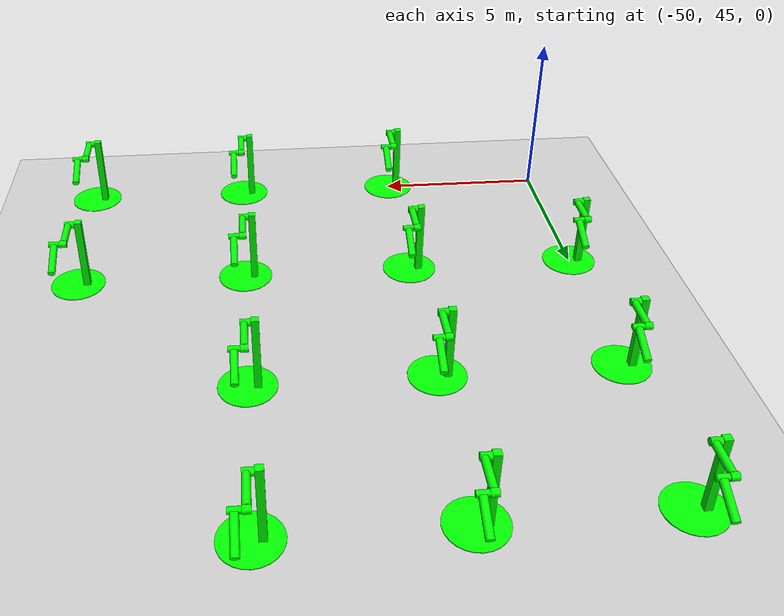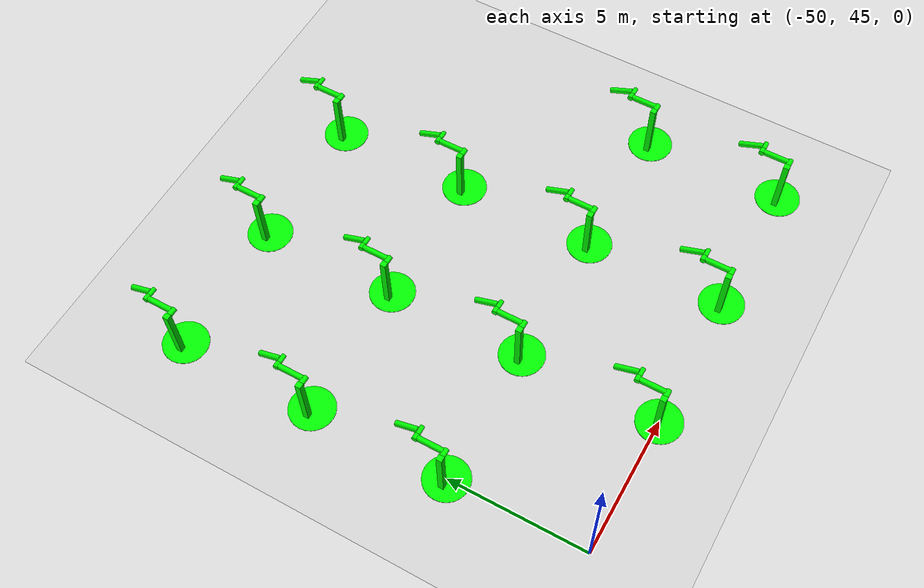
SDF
<sdf version="1.6">
 <world name="double_pendulums">
  <model name="ground_plane">
   <static>true</static>
   <link name="link">
    <collision name="collision">
     <geometry><plane><normal>0 0 1</normal><size>100 100</size></plane></geometry>
    </collision>
    <visual name="visual">
     <geometry><plane><normal>0 0 1</normal><size>100 100</size></plane></geometry>
     <material>
      <ambient>0.8 0.8 0.8 1</ambient>
      <diffuse>0.8 0.8 0.8 1</diffuse>
      <specular>0.8 0.8 0.8 1</specular>
     </material>
    </visual>
   </link>
  </model>
  <model name="dbl_pendulum_226">
   <pose>-45 45 0 0 0 0</pose>
   <link name="base">
    <inertial><mass>100</mass></inertial>
    <visual name="vis_plate_on_ground">
     <pose>0 0 0.01 0 0 0</pose>
     <geometry><cylinder><radius>0.8</radius><length>0.02</length></cylinder></geometry>
     <material><ambient>0 1 0 1</ambient><diffuse>0 1 0 1</diffuse><specular>0 1 0 1</specular></material>
    </visual>
    <visual name="vis_pole">
     <pose>-0.275 0 1.1 0 0 0</pose>
     <geometry><box><size>0.2 0.2 2.2</size></box></geometry>
     <material><ambient>0 1 0 1</ambient><diffuse>0 1 0 1</diffuse><specular>0 1 0 1</specular></material>
    </visual>
    <collision name="col_plate_on_ground">
     <pose>0 0 0.01 0 0 0</pose>
     <geometry><cylinder><radius>0.8</radius><length>0.02</length></cylinder></geometry>
    </collision>
    <collision name="col_pole">
     <pose>-0.275 0 1.1 0 0 0</pose>
     <geometry><box><size>0.2 0.2 2.2</size></box></geometry>
    </collision>
   </link>
   <link name="upper_link">
    <pose>0 0 2.1 -1.5708 0 0</pose>
    <inertial><pose>0 0 0.5 0 0 0</pose></inertial>
    <visual name="vis_upper_joint">
     <pose>-0.05 0 0 0 1.5708 0</pose>
     <geometry><cylinder><radius>0.1</radius><length>0.3</length></cylinder></geometry>
     <material><ambient>0 1 0 1</ambient><diffuse>0 1 0 1</diffuse><specular>0 1 0 1</specular></material>
    </visual>
    <visual name="vis_lower_joint">
     <pose>0 0 1.0 0 1.5708 0</pose>
     <geometry><cylinder><radius>0.1</radius><length>0.2</length></cylinder></geometry>
     <material><ambient>0 1 0 1</ambient><diffuse>0 1 0 1</diffuse><specular>0 1 0 1</specular></material>
    </visual>
    <visual name="vis_cylinder">
     <pose>0 0 0.5 0 0 0</pose>
     <geometry><cylinder><radius>0.1</radius><length>0.9</length></cylinder></geometry>
     <material><ambient>0 1 0 1</ambient><diffuse>0 1 0 1</diffuse><specular>0 1 0 1</specular></material>
    </visual>
    <collision name="col_upper_joint">
     <pose>-0.05 0 0 0 1.5708 0</pose>
     <geometry><cylinder><radius>0.1</radius><length>0.3</length></cylinder></geometry>
    </collision>
    <collision name="col_lower_joint">
     <pose>0 0 1.0 0 1.5708 0</pose>
     <geometry><cylinder><radius>0.1</radius><length>0.2</length></cylinder></geometry>
    </collision>
    <collision name="col_cylinder">
     <pose>0 0 0.5 0 0 0</pose>
     <geometry><cylinder><radius>0.1</radius><length>0.9</length></cylinder></geometry>
    </collision>
   </link>
   <link name="lower_link">
    <pose>0.25 1.0 2.1 -2 0 0</pose>
    <inertial><pose>0 0 0.5 0 0 0</pose></inertial>
    <visual name="vis_lower_joint">
     <pose>0 0 0 0 1.5708 0</pose>
     <geometry><cylinder><radius>0.08</radius><length>0.3</length></cylinder></geometry>
     <material><ambient>0 1 0 1</ambient><diffuse>0 1 0 1</diffuse><specular>0 1 0 1</specular></material>
    </visual>
    <visual name="vis_cylinder">
     <pose>0 0 0.5 0 0 0</pose>
     <geometry><cylinder><radius>0.1</radius><length>0.9</length></cylinder></geometry>
     <material><ambient>0 1 0 1</ambient><diffuse>0 1 0 1</diffuse><specular>0 1 0 1</specular></material>
    </visual>
    <collision name="col_lower_joint">
     <pose>0 0 0 0 1.5708 0</pose>
     <geometry><cylinder><radius>0.08</radius><length>0.3</length></cylinder></geometry>
    </collision>
    <collision name="col_cylinder">
     <pose>0 0 0.5 0 0 0</pose>
     <geometry><cylinder><radius>0.1</radius><length>0.9</length></cylinder></geometry>
    </collision>
   </link>
   <joint name="upper_joint" type="revolute">
    <parent>base</parent>
    <child>upper_link</child>
    <axis><xyz>1.0 0 0</xyz></axis>
   </joint>
   <joint name="lower_joint" type="revolute">
    <parent>upper_link</parent>
    <child>lower_link</child>
    <axis><xyz>1.0 0 0</xyz></axis>
   </joint>
  </model>
  <model name="dbl_pendulum_227">
   <pose>-40 45 0 0 0 0</pose>
   <link name="base">
    <inertial><mass>100</mass></inertial>
    <visual name="vis_plate_on_ground">
     <pose>0 0 0.01 0 0 0</pose>
     <geometry><cylinder><radius>0.8</radius><length>0.02</length></cylinder></geometry>
     <material><ambient>0 1 0 1</ambient><diffuse>0 1 0 1</diffuse><specular>0 1 0 1</specular></material>
    </visual>
    <visual name="vis_pole">
     <pose>-0.275 0 1.1 0 0 0</pose>
     <geometry><box><size>0.2 0.2 2.2</size></box></geometry>
     <material><ambient>0 1 0 1</ambient><diffuse>0 1 0 1</diffuse><specular>0 1 0 1</specular></material>
    </visual>
    <collision name="col_plate_on_ground">
     <pose>0 0 0.01 0 0 0</pose>
     <geometry><cylinder><radius>0.8</radius><length>0.02</length></cylinder></geometry>
    </collision>
    <collision name="col_pole">
     <pose>-0.275 0 1.1 0 0 0</pose>
     <geometry><box><size>0.2 0.2 2.2</size></box></geometry>
    </collision>
   </link>
   <link name="upper_link">
    <pose>0 0 2.1 -1.5708 0 0</pose>
    <inertial><pose>0 0 0.5 0 0 0</pose></inertial>
    <visual name="vis_upper_joint">
     <pose>-0.05 0 0 0 1.5708 0</pose>
     <geometry><cylinder><radius>0.1</radius><length>0.3</length></cylinder></geometry>
     <material><ambient>0 1 0 1</ambient><diffuse>0 1 0 1</diffuse><specular>0 1 0 1</specular></material>
    </visual>
    <visual name="vis_lower_joint">
     <pose>0 0 1.0 0 1.5708 0</pose>
     <geometry><cylinder><radius>0.1</radius><length>0.2</length></cylinder></geometry>
     <material><ambient>0 1 0 1</ambient><diffuse>0 1 0 1</diffuse><specular>0 1 0 1</specular></material>
    </visual>
    <visual name="vis_cylinder">
     <pose>0 0 0.5 0 0 0</pose>
     <geometry><cylinder><radius>0.1</radius><length>0.9</length></cylinder></geometry>
     <material><ambient>0 1 0 1</ambient><diffuse>0 1 0 1</diffuse><specular>0 1 0 1</specular></material>
    </visual>
    <collision name="col_upper_joint">
     <pose>-0.05 0 0 0 1.5708 0</pose>
     <geometry><cylinder><radius>0.1</radius><length>0.3</length></cylinder></geometry>
    </collision>
    <collision name="col_lower_joint">
     <pose>0 0 1.0 0 1.5708 0</pose>
     <geometry><cylinder><radius>0.1</radius><length>0.2</length></cylinder></geometry>
    </collision>
    <collision name="col_cylinder">
     <pose>0 0 0.5 0 0 0</pose>
     <geometry><cylinder><radius>0.1</radius><length>0.9</length></cylinder></geometry>
    </collision>
   </link>
   <link name="lower_link">
    <pose>0.25 1.0 2.1 -2 0 0</pose>
    <inertial><pose>0 0 0.5 0 0 0</pose></inertial>
    <visual name="vis_lower_joint">
     <pose>0 0 0 0 1.5708 0</pose>
     <geometry><cylinder><radius>0.08</radius><length>0.3</length></cylinder></geometry>
     <material><ambient>0 1 0 1</ambient><diffuse>0 1 0 1</diffuse><specular>0 1 0 1</specular></material>
    </visual>
    <visual name="vis_cylinder">
     <pose>0 0 0.5 0 0 0</pose>
     <geometry><cylinder><radius>0.1</radius><length>0.9</length></cylinder></geometry>
     <material><ambient>0 1 0 1</ambient><diffuse>0 1 0 1</diffuse><specular>0 1 0 1</specular></material>
    </visual>
    <collision name="col_lower_joint">
     <pose>0 0 0 0 1.5708 0</pose>
     <geometry><cylinder><radius>0.08</radius><length>0.3</length></cylinder></geometry>
    </collision>
    <collision name="col_cylinder">
     <pose>0 0 0.5 0 0 0</pose>
     <geometry><cylinder><radius>0.1</radius><length>0.9</length></cylinder></geometry>
    </collision>
   </link>
   <joint name="upper_joint" type="revolute">
    <parent>base</parent>
    <child>upper_link</child>
    <axis><xyz>1.0 0 0</xyz></axis>
   </joint>
   <joint name="lower_joint" type="revolute">
    <parent>upper_link</parent>
    <child>lower_link</child>
    <axis><xyz>1.0 0 0</xyz></axis>
   </joint>
  </model>
  <model name="dbl_pendulum_228">
   <pose>-35 45 0 0 0 0</pose>
   <link name="base">
    <inertial><mass>100</mass></inertial>
    <visual name="vis_plate_on_ground">
     <pose>0 0 0.01 0 0 0</pose>
     <geometry><cylinder><radius>0.8</radius><length>0.02</length></cylinder></geometry>
     <material><ambient>0 1 0 1</ambient><diffuse>0 1 0 1</diffuse><specular>0 1 0 1</specular></material>
    </visual>
    <visual name="vis_pole">
     <pose>-0.275 0 1.1 0 0 0</pose>
     <geometry><box><size>0.2 0.2 2.2</size></box></geometry>
     <material><ambient>0 1 0 1</ambient><diffuse>0 1 0 1</diffuse><specular>0 1 0 1</specular></material>
    </visual>
    <collision name="col_plate_on_ground">
     <pose>0 0 0.01 0 0 0</pose>
     <geometry><cylinder><radius>0.8</radius><length>0.02</length></cylinder></geometry>
    </collision>
    <collision name="col_pole">
     <pose>-0.275 0 1.1 0 0 0</pose>
     <geometry><box><size>0.2 0.2 2.2</size></box></geometry>
    </collision>
   </link>
   <link name="upper_link">
    <pose>0 0 2.1 -1.5708 0 0</pose>
    <inertial><pose>0 0 0.5 0 0 0</pose></inertial>
    <visual name="vis_upper_joint">
     <pose>-0.05 0 0 0 1.5708 0</pose>
     <geometry><cylinder><radius>0.1</radius><length>0.3</length></cylinder></geometry>
     <material><ambient>0 1 0 1</ambient><diffuse>0 1 0 1</diffuse><specular>0 1 0 1</specular></material>
    </visual>
    <visual name="vis_lower_joint">
     <pose>0 0 1.0 0 1.5708 0</pose>
     <geometry><cylinder><radius>0.1</radius><length>0.2</length></cylinder></geometry>
     <material><ambient>0 1 0 1</ambient><diffuse>0 1 0 1</diffuse><specular>0 1 0 1</specular></material>
    </visual>
    <visual name="vis_cylinder">
     <pose>0 0 0.5 0 0 0</pose>
     <geometry><cylinder><radius>0.1</radius><length>0.9</length></cylinder></geometry>
     <material><ambient>0 1 0 1</ambient><diffuse>0 1 0 1</diffuse><specular>0 1 0 1</specular></material>
    </visual>
    <collision name="col_upper_joint">
     <pose>-0.05 0 0 0 1.5708 0</pose>
     <geometry><cylinder><radius>0.1</radius><length>0.3</length></cylinder></geometry>
    </collision>
    <collision name="col_lower_joint">
     <pose>0 0 1.0 0 1.5708 0</pose>
     <geometry><cylinder><radius>0.1</radius><length>0.2</length></cylinder></geometry>
    </collision>
    <collision name="col_cylinder">
     <pose>0 0 0.5 0 0 0</pose>
     <geometry><cylinder><radius>0.1</radius><length>0.9</length></cylinder></geometry>
    </collision>
   </link>
   <link name="lower_link">
    <pose>0.25 1.0 2.1 -2 0 0</pose>
    <inertial><pose>0 0 0.5 0 0 0</pose></inertial>
    <visual name="vis_lower_joint">
     <pose>0 0 0 0 1.5708 0</pose>
     <geometry><cylinder><radius>0.08</radius><length>0.3</length></cylinder></geometry>
     <material><ambient>0 1 0 1</ambient><diffuse>0 1 0 1</diffuse><specular>0 1 0 1</specular></material>
    </visual>
    <visual name="vis_cylinder">
     <pose>0 0 0.5 0 0 0</pose>
     <geometry><cylinder><radius>0.1</radius><length>0.9</length></cylinder></geometry>
     <material><ambient>0 1 0 1</ambient><diffuse>0 1 0 1</diffuse><specular>0 1 0 1</specular></material>
    </visual>
    <collision name="col_lower_joint">
     <pose>0 0 0 0 1.5708 0</pose>
     <geometry><cylinder><radius>0.08</radius><length>0.3</length></cylinder></geometry>
    </collision>
    <collision name="col_cylinder">
     <pose>0 0 0.5 0 0 0</pose>
     <geometry><cylinder><radius>0.1</radius><length>0.9</length></cylinder></geometry>
    </collision>
   </link>
   <joint name="upper_joint" type="revolute">
    <parent>base</parent>
    <child>upper_link</child>
    <axis><xyz>1.0 0 0</xyz></axis>
   </joint>
   <joint name="lower_joint" type="revolute">
    <parent>upper_link</parent>
    <child>lower_link</child>
    <axis><xyz>1.0 0 0</xyz></axis>
   </joint>
  </model>
  <model name="dbl_pendulum_250">
   <pose>-50 50 0 0 0 0</pose>
   <link name="base">
    <inertial><mass>100</mass></inertial>
    <visual name="vis_plate_on_ground">
     <pose>0 0 0.01 0 0 0</pose>
     <geometry><cylinder><radius>0.8</radius><length>0.02</length></cylinder></geometry>
     <material><ambient>0 1 0 1</ambient><diffuse>0 1 0 1</diffuse><specular>0 1 0 1</specular></material>
    </visual>
    <visual name="vis_pole">
     <pose>-0.275 0 1.1 0 0 0</pose>
     <geometry><box><size>0.2 0.2 2.2</size></box></geometry>
     <material><ambient>0 1 0 1</ambient><diffuse>0 1 0 1</diffuse><specular>0 1 0 1</specular></material>
    </visual>
    <collision name="col_plate_on_ground">
     <pose>0 0 0.01 0 0 0</pose>
     <geometry><cylinder><radius>0.8</radius><length>0.02</length></cylinder></geometry>
    </collision>
    <collision name="col_pole">
     <pose>-0.275 0 1.1 0 0 0</pose>
     <geometry><box><size>0.2 0.2 2.2</size></box></geometry>
    </collision>
   </link>
   <link name="upper_link">
    <pose>0 0 2.1 -1.5708 0 0</pose>
    <inertial><pose>0 0 0.5 0 0 0</pose></inertial>
    <visual name="vis_upper_joint">
     <pose>-0.05 0 0 0 1.5708 0</pose>
     <geometry><cylinder><radius>0.1</radius><length>0.3</length></cylinder></geometry>
     <material><ambient>0 1 0 1</ambient><diffuse>0 1 0 1</diffuse><specular>0 1 0 1</specular></material>
    </visual>
    <visual name="vis_lower_joint">
     <pose>0 0 1.0 0 1.5708 0</pose>
     <geometry><cylinder><radius>0.1</radius><length>0.2</length></cylinder></geometry>
     <material><ambient>0 1 0 1</ambient><diffuse>0 1 0 1</diffuse><specular>0 1 0 1</specular></material>
    </visual>
    <visual name="vis_cylinder">
     <pose>0 0 0.5 0 0 0</pose>
     <geometry><cylinder><radius>0.1</radius><length>0.9</length></cylinder></geometry>
     <material><ambient>0 1 0 1</ambient><diffuse>0 1 0 1</diffuse><specular>0 1 0 1</specular></material>
    </visual>
    <collision name="col_upper_joint">
     <pose>-0.05 0 0 0 1.5708 0</pose>
     <geometry><cylinder><radius>0.1</radius><length>0.3</length></cylinder></geometry>
    </collision>
    <collision name="col_lower_joint">
     <pose>0 0 1.0 0 1.5708 0</pose>
     <geometry><cylinder><radius>0.1</radius><length>0.2</length></cylinder></geometry>
    </collision>
    <collision name="col_cylinder">
     <pose>0 0 0.5 0 0 0</pose>
     <geometry><cylinder><radius>0.1</radius><length>0.9</length></cylinder></geometry>
    </collision>
   </link>
   <link name="lower_link">
    <pose>0.25 1.0 2.1 -2 0 0</pose>
    <inertial><pose>0 0 0.5 0 0 0</pose></inertial>
    <visual name="vis_lower_joint">
     <pose>0 0 0 0 1.5708 0</pose>
     <geometry><cylinder><radius>0.08</radius><length>0.3</length></cylinder></geometry>
     <material><ambient>0 1 0 1</ambient><diffuse>0 1 0 1</diffuse><specular>0 1 0 1</specular></material>
    </visual>
    <visual name="vis_cylinder">
     <pose>0 0 0.5 0 0 0</pose>
     <geometry><cylinder><radius>0.1</radius><length>0.9</length></cylinder></geometry>
     <material><ambient>0 1 0 1</ambient><diffuse>0 1 0 1</diffuse><specular>0 1 0 1</specular></material>
    </visual>
    <collision name="col_lower_joint">
     <pose>0 0 0 0 1.5708 0</pose>
     <geometry><cylinder><radius>0.08</radius><length>0.3</length></cylinder></geometry>
    </collision>
    <collision name="col_cylinder">
     <pose>0 0 0.5 0 0 0</pose>
     <geometry><cylinder><radius>0.1</radius><length>0.9</length></cylinder></geometry>
    </collision>
   </link>
   <joint name="upper_joint" type="revolute">
    <parent>base</parent>
    <child>upper_link</child>
    <axis><xyz>1.0 0 0</xyz></axis>
   </joint>
   <joint name="lower_joint" type="revolute">
    <parent>upper_link</parent>
    <child>lower_link</child>
    <axis><xyz>1.0 0 0</xyz></axis>
   </joint>
  </model>
  <model name="dbl_pendulum_251">
   <pose>-45 50 0 0 0 0</pose>
   <link name="base">
    <inertial><mass>100</mass></inertial>
    <visual name="vis_plate_on_ground">
     <pose>0 0 0.01 0 0 0</pose>
     <geometry><cylinder><radius>0.8</radius><length>0.02</length></cylinder></geometry>
     <material><ambient>0 1 0 1</ambient><diffuse>0 1 0 1</diffuse><specular>0 1 0 1</specular></material>
    </visual>
    <visual name="vis_pole">
     <pose>-0.275 0 1.1 0 0 0</pose>
     <geometry><box><size>0.2 0.2 2.2</size></box></geometry>
     <material><ambient>0 1 0 1</ambient><diffuse>0 1 0 1</diffuse><specular>0 1 0 1</specular></material>
    </visual>
    <collision name="col_plate_on_ground">
     <pose>0 0 0.01 0 0 0</pose>
     <geometry><cylinder><radius>0.8</radius><length>0.02</length></cylinder></geometry>
    </collision>
    <collision name="col_pole">
     <pose>-0.275 0 1.1 0 0 0</pose>
     <geometry><box><size>0.2 0.2 2.2</size></box></geometry>
    </collision>
   </link>
   <link name="upper_link">
    <pose>0 0 2.1 -1.5708 0 0</pose>
    <inertial><pose>0 0 0.5 0 0 0</pose></inertial>
    <visual name="vis_upper_joint">
     <pose>-0.05 0 0 0 1.5708 0</pose>
     <geometry><cylinder><radius>0.1</radius><length>0.3</length></cylinder></geometry>
     <material><ambient>0 1 0 1</ambient><diffuse>0 1 0 1</diffuse><specular>0 1 0 1</specular></material>
    </visual>
    <visual name="vis_lower_joint">
     <pose>0 0 1.0 0 1.5708 0</pose>
     <geometry><cylinder><radius>0.1</radius><length>0.2</length></cylinder></geometry>
     <material><ambient>0 1 0 1</ambient><diffuse>0 1 0 1</diffuse><specular>0 1 0 1</specular></material>
    </visual>
    <visual name="vis_cylinder">
     <pose>0 0 0.5 0 0 0</pose>
     <geometry><cylinder><radius>0.1</radius><length>0.9</length></cylinder></geometry>
     <material><ambient>0 1 0 1</ambient><diffuse>0 1 0 1</diffuse><specular>0 1 0 1</specular></material>
    </visual>
    <collision name="col_upper_joint">
     <pose>-0.05 0 0 0 1.5708 0</pose>
     <geometry><cylinder><radius>0.1</radius><length>0.3</length></cylinder></geometry>
    </collision>
    <collision name="col_lower_joint">
     <pose>0 0 1.0 0 1.5708 0</pose>
     <geometry><cylinder><radius>0.1</radius><length>0.2</length></cylinder></geometry>
    </collision>
    <collision name="col_cylinder">
     <pose>0 0 0.5 0 0 0</pose>
     <geometry><cylinder><radius>0.1</radius><length>0.9</length></cylinder></geometry>
    </collision>
   </link>
   <link name="lower_link">
    <pose>0.25 1.0 2.1 -2 0 0</pose>
    <inertial><pose>0 0 0.5 0 0 0</pose></inertial>
    <visual name="vis_lower_joint">
     <pose>0 0 0 0 1.5708 0</pose>
     <geometry><cylinder><radius>0.08</radius><length>0.3</length></cylinder></geometry>
     <material><ambient>0 1 0 1</ambient><diffuse>0 1 0 1</diffuse><specular>0 1 0 1</specular></material>
    </visual>
    <visual name="vis_cylinder">
     <pose>0 0 0.5 0 0 0</pose>
     <geometry><cylinder><radius>0.1</radius><length>0.9</length></cylinder></geometry>
     <material><ambient>0 1 0 1</ambient><diffuse>0 1 0 1</diffuse><specular>0 1 0 1</specular></material>
    </visual>
    <collision name="col_lower_joint">
     <pose>0 0 0 0 1.5708 0</pose>
     <geometry><cylinder><radius>0.08</radius><length>0.3</length></cylinder></geometry>
    </collision>
    <collision name="col_cylinder">
     <pose>0 0 0.5 0 0 0</pose>
     <geometry><cylinder><radius>0.1</radius><length>0.9</length></cylinder></geometry>
    </collision>
   </link>
   <joint name="upper_joint" type="revolute">
    <parent>base</parent>
    <child>upper_link</child>
    <axis><xyz>1.0 0 0</xyz></axis>
   </joint>
   <joint name="lower_joint" type="revolute">
    <parent>upper_link</parent>
    <child>lower_link</child>
    <axis><xyz>1.0 0 0</xyz></axis>
   </joint>
  </model>
  <model name="dbl_pendulum_252">
   <pose>-40 50 0 0 0 0</pose>
   <link name="base">
    <inertial><mass>100</mass></inertial>
    <visual name="vis_plate_on_ground">
     <pose>0 0 0.01 0 0 0</pose>
     <geometry><cylinder><radius>0.8</radius><length>0.02</length></cylinder></geometry>
     <material><ambient>0 1 0 1</ambient><diffuse>0 1 0 1</diffuse><specular>0 1 0 1</specular></material>
    </visual>
    <visual name="vis_pole">
     <pose>-0.275 0 1.1 0 0 0</pose>
     <geometry><box><size>0.2 0.2 2.2</size></box></geometry>
     <material><ambient>0 1 0 1</ambient><diffuse>0 1 0 1</diffuse><specular>0 1 0 1</specular></material>
    </visual>
    <collision name="col_plate_on_ground">
     <pose>0 0 0.01 0 0 0</pose>
     <geometry><cylinder><radius>0.8</radius><length>0.02</length></cylinder></geometry>
    </collision>
    <collision name="col_pole">
     <pose>-0.275 0 1.1 0 0 0</pose>
     <geometry><box><size>0.2 0.2 2.2</size></box></geometry>
    </collision>
   </link>
   <link name="upper_link">
    <pose>0 0 2.1 -1.5708 0 0</pose>
    <inertial><pose>0 0 0.5 0 0 0</pose></inertial>
    <visual name="vis_upper_joint">
     <pose>-0.05 0 0 0 1.5708 0</pose>
     <geometry><cylinder><radius>0.1</radius><length>0.3</length></cylinder></geometry>
     <material><ambient>0 1 0 1</ambient><diffuse>0 1 0 1</diffuse><specular>0 1 0 1</specular></material>
    </visual>
    <visual name="vis_lower_joint">
     <pose>0 0 1.0 0 1.5708 0</pose>
     <geometry><cylinder><radius>0.1</radius><length>0.2</length></cylinder></geometry>
     <material><ambient>0 1 0 1</ambient><diffuse>0 1 0 1</diffuse><specular>0 1 0 1</specular></material>
    </visual>
    <visual name="vis_cylinder">
     <pose>0 0 0.5 0 0 0</pose>
     <geometry><cylinder><radius>0.1</radius><length>0.9</length></cylinder></geometry>
     <material><ambient>0 1 0 1</ambient><diffuse>0 1 0 1</diffuse><specular>0 1 0 1</specular></material>
    </visual>
    <collision name="col_upper_joint">
     <pose>-0.05 0 0 0 1.5708 0</pose>
     <geometry><cylinder><radius>0.1</radius><length>0.3</length></cylinder></geometry>
    </collision>
    <collision name="col_lower_joint">
     <pose>0 0 1.0 0 1.5708 0</pose>
     <geometry><cylinder><radius>0.1</radius><length>0.2</length></cylinder></geometry>
    </collision>
    <collision name="col_cylinder">
     <pose>0 0 0.5 0 0 0</pose>
     <geometry><cylinder><radius>0.1</radius><length>0.9</length></cylinder></geometry>
    </collision>
   </link>
   <link name="lower_link">
    <pose>0.25 1.0 2.1 -2 0 0</pose>
    <inertial><pose>0 0 0.5 0 0 0</pose></inertial>
    <visual name="vis_lower_joint">
     <pose>0 0 0 0 1.5708 0</pose>
     <geometry><cylinder><radius>0.08</radius><length>0.3</length></cylinder></geometry>
     <material><ambient>0 1 0 1</ambient><diffuse>0 1 0 1</diffuse><specular>0 1 0 1</specular></material>
    </visual>
    <visual name="vis_cylinder">
     <pose>0 0 0.5 0 0 0</pose>
     <geometry><cylinder><radius>0.1</radius><length>0.9</length></cylinder></geometry>
     <material><ambient>0 1 0 1</ambient><diffuse>0 1 0 1</diffuse><specular>0 1 0 1</specular></material>
    </visual>
    <collision name="col_lower_joint">
     <pose>0 0 0 0 1.5708 0</pose>
     <geometry><cylinder><radius>0.08</radius><length>0.3</length></cylinder></geometry>
    </collision>
    <collision name="col_cylinder">
     <pose>0 0 0.5 0 0 0</pose>
     <geometry><cylinder><radius>0.1</radius><length>0.9</length></cylinder></geometry>
    </collision>
   </link>
   <joint name="upper_joint" type="revolute">
    <parent>base</parent>
    <child>upper_link</child>
    <axis><xyz>1.0 0 0</xyz></axis>
   </joint>
   <joint name="lower_joint" type="revolute">
    <parent>upper_link</parent>
    <child>lower_link</child>
    <axis><xyz>1.0 0 0</xyz></axis>
   </joint>
  </model>
  <model name="dbl_pendulum_253">
   <pose>-35 50 0 0 0 0</pose>
   <link name="base">
    <inertial><mass>100</mass></inertial>
    <visual name="vis_plate_on_ground">
     <pose>0 0 0.01 0 0 0</pose>
     <geometry><cylinder><radius>0.8</radius><length>0.02</length></cylinder></geometry>
     <material><ambient>0 1 0 1</ambient><diffuse>0 1 0 1</diffuse><specular>0 1 0 1</specular></material>
    </visual>
    <visual name="vis_pole">
     <pose>-0.275 0 1.1 0 0 0</pose>
     <geometry><box><size>0.2 0.2 2.2</size></box></geometry>
     <material><ambient>0 1 0 1</ambient><diffuse>0 1 0 1</diffuse><specular>0 1 0 1</specular></material>
    </visual>
    <collision name="col_plate_on_ground">
     <pose>0 0 0.01 0 0 0</pose>
     <geometry><cylinder><radius>0.8</radius><length>0.02</length></cylinder></geometry>
    </collision>
    <collision name="col_pole">
     <pose>-0.275 0 1.1 0 0 0</pose>
     <geometry><box><size>0.2 0.2 2.2</size></box></geometry>
    </collision>
   </link>
   <link name="upper_link">
    <pose>0 0 2.1 -1.5708 0 0</pose>
    <inertial><pose>0 0 0.5 0 0 0</pose></inertial>
    <visual name="vis_upper_joint">
     <pose>-0.05 0 0 0 1.5708 0</pose>
     <geometry><cylinder><radius>0.1</radius><length>0.3</length></cylinder></geometry>
     <material><ambient>0 1 0 1</ambient><diffuse>0 1 0 1</diffuse><specular>0 1 0 1</specular></material>
    </visual>
    <visual name="vis_lower_joint">
     <pose>0 0 1.0 0 1.5708 0</pose>
     <geometry><cylinder><radius>0.1</radius><length>0.2</length></cylinder></geometry>
     <material><ambient>0 1 0 1</ambient><diffuse>0 1 0 1</diffuse><specular>0 1 0 1</specular></material>
    </visual>
    <visual name="vis_cylinder">
     <pose>0 0 0.5 0 0 0</pose>
     <geometry><cylinder><radius>0.1</radius><length>0.9</length></cylinder></geometry>
     <material><ambient>0 1 0 1</ambient><diffuse>0 1 0 1</diffuse><specular>0 1 0 1</specular></material>
    </visual>
    <collision name="col_upper_joint">
     <pose>-0.05 0 0 0 1.5708 0</pose>
     <geometry><cylinder><radius>0.1</radius><length>0.3</length></cylinder></geometry>
    </collision>
    <collision name="col_lower_joint">
     <pose>0 0 1.0 0 1.5708 0</pose>
     <geometry><cylinder><radius>0.1</radius><length>0.2</length></cylinder></geometry>
    </collision>
    <collision name="col_cylinder">
     <pose>0 0 0.5 0 0 0</pose>
     <geometry><cylinder><radius>0.1</radius><length>0.9</length></cylinder></geometry>
    </collision>
   </link>
   <link name="lower_link">
    <pose>0.25 1.0 2.1 -2 0 0</pose>
    <inertial><pose>0 0 0.5 0 0 0</pose></inertial>
    <visual name="vis_lower_joint">
     <pose>0 0 0 0 1.5708 0</pose>
     <geometry><cylinder><radius>0.08</radius><length>0.3</length></cylinder></geometry>
     <material><ambient>0 1 0 1</ambient><diffuse>0 1 0 1</diffuse><specular>0 1 0 1</specular></material>
    </visual>
    <visual name="vis_cylinder">
     <pose>0 0 0.5 0 0 0</pose>
     <geometry><cylinder><radius>0.1</radius><length>0.9</length></cylinder></geometry>
     <material><ambient>0 1 0 1</ambient><diffuse>0 1 0 1</diffuse><specular>0 1 0 1</specular></material>
    </visual>
    <collision name="col_lower_joint">
     <pose>0 0 0 0 1.5708 0</pose>
     <geometry><cylinder><radius>0.08</radius><length>0.3</length></cylinder></geometry>
    </collision>
    <collision name="col_cylinder">
     <pose>0 0 0.5 0 0 0</pose>
     <geometry><cylinder><radius>0.1</radius><length>0.9</length></cylinder></geometry>
    </collision>
   </link>
   <joint name="upper_joint" type="revolute">
    <parent>base</parent>
    <child>upper_link</child>
    <axis><xyz>1.0 0 0</xyz></axis>
   </joint>
   <joint name="lower_joint" type="revolute">
    <parent>upper_link</parent>
    <child>lower_link</child>
    <axis><xyz>1.0 0 0</xyz></axis>
   </joint>
  </model>
  <model name="dbl_pendulum_275">
   <pose>-50 55 0 0 0 0</pose>
   <link name="base">
    <inertial><mass>100</mass></inertial>
    <visual name="vis_plate_on_ground">
     <pose>0 0 0.01 0 0 0</pose>
     <geometry><cylinder><radius>0.8</radius><length>0.02</length></cylinder></geometry>
     <material><ambient>0 1 0 1</ambient><diffuse>0 1 0 1</diffuse><specular>0 1 0 1</specular></material>
    </visual>
    <visual name="vis_pole">
     <pose>-0.275 0 1.1 0 0 0</pose>
     <geometry><box><size>0.2 0.2 2.2</size></box></geometry>
     <material><ambient>0 1 0 1</ambient><diffuse>0 1 0 1</diffuse><specular>0 1 0 1</specular></material>
    </visual>
    <collision name="col_plate_on_ground">
     <pose>0 0 0.01 0 0 0</pose>
     <geometry><cylinder><radius>0.8</radius><length>0.02</length></cylinder></geometry>
    </collision>
    <collision name="col_pole">
     <pose>-0.275 0 1.1 0 0 0</pose>
     <geometry><box><size>0.2 0.2 2.2</size></box></geometry>
    </collision>
   </link>
   <link name="upper_link">
    <pose>0 0 2.1 -1.5708 0 0</pose>
    <inertial><pose>0 0 0.5 0 0 0</pose></inertial>
    <visual name="vis_upper_joint">
     <pose>-0.05 0 0 0 1.5708 0</pose>
     <geometry><cylinder><radius>0.1</radius><length>0.3</length></cylinder></geometry>
     <material><ambient>0 1 0 1</ambient><diffuse>0 1 0 1</diffuse><specular>0 1 0 1</specular></material>
    </visual>
    <visual name="vis_lower_joint">
     <pose>0 0 1.0 0 1.5708 0</pose>
     <geometry><cylinder><radius>0.1</radius><length>0.2</length></cylinder></geometry>
     <material><ambient>0 1 0 1</ambient><diffuse>0 1 0 1</diffuse><specular>0 1 0 1</specular></material>
    </visual>
    <visual name="vis_cylinder">
     <pose>0 0 0.5 0 0 0</pose>
     <geometry><cylinder><radius>0.1</radius><length>0.9</length></cylinder></geometry>
     <material><ambient>0 1 0 1</ambient><diffuse>0 1 0 1</diffuse><specular>0 1 0 1</specular></material>
    </visual>
    <collision name="col_upper_joint">
     <pose>-0.05 0 0 0 1.5708 0</pose>
     <geometry><cylinder><radius>0.1</radius><length>0.3</length></cylinder></geometry>
    </collision>
    <collision name="col_lower_joint">
     <pose>0 0 1.0 0 1.5708 0</pose>
     <geometry><cylinder><radius>0.1</radius><length>0.2</length></cylinder></geometry>
    </collision>
    <collision name="col_cylinder">
     <pose>0 0 0.5 0 0 0</pose>
     <geometry><cylinder><radius>0.1</radius><length>0.9</length></cylinder></geometry>
    </collision>
   </link>
   <link name="lower_link">
    <pose>0.25 1.0 2.1 -2 0 0</pose>
    <inertial><pose>0 0 0.5 0 0 0</pose></inertial>
    <visual name="vis_lower_joint">
     <pose>0 0 0 0 1.5708 0</pose>
     <geometry><cylinder><radius>0.08</radius><length>0.3</length></cylinder></geometry>
     <material><ambient>0 1 0 1</ambient><diffuse>0 1 0 1</diffuse><specular>0 1 0 1</specular></material>
    </visual>
    <visual name="vis_cylinder">
     <pose>0 0 0.5 0 0 0</pose>
     <geometry><cylinder><radius>0.1</radius><length>0.9</length></cylinder></geometry>
     <material><ambient>0 1 0 1</ambient><diffuse>0 1 0 1</diffuse><specular>0 1 0 1</specular></material>
    </visual>
    <collision name="col_lower_joint">
     <pose>0 0 0 0 1.5708 0</pose>
     <geometry><cylinder><radius>0.08</radius><length>0.3</length></cylinder></geometry>
    </collision>
    <collision name="col_cylinder">
     <pose>0 0 0.5 0 0 0</pose>
     <geometry><cylinder><radius>0.1</radius><length>0.9</length></cylinder></geometry>
    </collision>
   </link>
   <joint name="upper_joint" type="revolute">
    <parent>base</parent>
    <child>upper_link</child>
    <axis><xyz>1.0 0 0</xyz></axis>
   </joint>
   <joint name="lower_joint" type="revolute">
    <parent>upper_link</parent>
    <child>lower_link</child>
    <axis><xyz>1.0 0 0</xyz></axis>
   </joint>
  </model>
  <model name="dbl_pendulum_276">
   <pose>-45 55 0 0 0 0</pose>
   <link name="base">
    <inertial><mass>100</mass></inertial>
    <visual name="vis_plate_on_ground">
     <pose>0 0 0.01 0 0 0</pose>
     <geometry><cylinder><radius>0.8</radius><length>0.02</length></cylinder></geometry>
     <material><ambient>0 1 0 1</ambient><diffuse>0 1 0 1</diffuse><specular>0 1 0 1</specular></material>
    </visual>
    <visual name="vis_pole">
     <pose>-0.275 0 1.1 0 0 0</pose>
     <geometry><box><size>0.2 0.2 2.2</size></box></geometry>
     <material><ambient>0 1 0 1</ambient><diffuse>0 1 0 1</diffuse><specular>0 1 0 1</specular></material>
    </visual>
    <collision name="col_plate_on_ground">
     <pose>0 0 0.01 0 0 0</pose>
     <geometry><cylinder><radius>0.8</radius><length>0.02</length></cylinder></geometry>
    </collision>
    <collision name="col_pole">
     <pose>-0.275 0 1.1 0 0 0</pose>
     <geometry><box><size>0.2 0.2 2.2</size></box></geometry>
    </collision>
   </link>
   <link name="upper_link">
    <pose>0 0 2.1 -1.5708 0 0</pose>
    <inertial><pose>0 0 0.5 0 0 0</pose></inertial>
    <visual name="vis_upper_joint">
     <pose>-0.05 0 0 0 1.5708 0</pose>
     <geometry><cylinder><radius>0.1</radius><length>0.3</length></cylinder></geometry>
     <material><ambient>0 1 0 1</ambient><diffuse>0 1 0 1</diffuse><specular>0 1 0 1</specular></material>
    </visual>
    <visual name="vis_lower_joint">
     <pose>0 0 1.0 0 1.5708 0</pose>
     <geometry><cylinder><radius>0.1</radius><length>0.2</length></cylinder></geometry>
     <material><ambient>0 1 0 1</ambient><diffuse>0 1 0 1</diffuse><specular>0 1 0 1</specular></material>
    </visual>
    <visual name="vis_cylinder">
     <pose>0 0 0.5 0 0 0</pose>
     <geometry><cylinder><radius>0.1</radius><length>0.9</length></cylinder></geometry>
     <material><ambient>0 1 0 1</ambient><diffuse>0 1 0 1</diffuse><specular>0 1 0 1</specular></material>
    </visual>
    <collision name="col_upper_joint">
     <pose>-0.05 0 0 0 1.5708 0</pose>
     <geometry><cylinder><radius>0.1</radius><length>0.3</length></cylinder></geometry>
    </collision>
    <collision name="col_lower_joint">
     <pose>0 0 1.0 0 1.5708 0</pose>
     <geometry><cylinder><radius>0.1</radius><length>0.2</length></cylinder></geometry>
    </collision>
    <collision name="col_cylinder">
     <pose>0 0 0.5 0 0 0</pose>
     <geometry><cylinder><radius>0.1</radius><length>0.9</length></cylinder></geometry>
    </collision>
   </link>
   <link name="lower_link">
    <pose>0.25 1.0 2.1 -2 0 0</pose>
    <inertial><pose>0 0 0.5 0 0 0</pose></inertial>
    <visual name="vis_lower_joint">
     <pose>0 0 0 0 1.5708 0</pose>
     <geometry><cylinder><radius>0.08</radius><length>0.3</length></cylinder></geometry>
     <material><ambient>0 1 0 1</ambient><diffuse>0 1 0 1</diffuse><specular>0 1 0 1</specular></material>
    </visual>
    <visual name="vis_cylinder">
     <pose>0 0 0.5 0 0 0</pose>
     <geometry><cylinder><radius>0.1</radius><length>0.9</length></cylinder></geometry>
     <material><ambient>0 1 0 1</ambient><diffuse>0 1 0 1</diffuse><specular>0 1 0 1</specular></material>
    </visual>
    <collision name="col_lower_joint">
     <pose>0 0 0 0 1.5708 0</pose>
     <geometry><cylinder><radius>0.08</radius><length>0.3</length></cylinder></geometry>
    </collision>
    <collision name="col_cylinder">
     <pose>0 0 0.5 0 0 0</pose>
     <geometry><cylinder><radius>0.1</radius><length>0.9</length></cylinder></geometry>
    </collision>
   </link>
   <joint name="upper_joint" type="revolute">
    <parent>base</parent>
    <child>upper_link</child>
    <axis><xyz>1.0 0 0</xyz></axis>
   </joint>
   <joint name="lower_joint" type="revolute">
    <parent>upper_link</parent>
    <child>lower_link</child>
    <axis><xyz>1.0 0 0</xyz></axis>
   </joint>
  </model>
  <model name="dbl_pendulum_277">
   <pose>-40 55 0 0 0 0</pose>
   <link name="base">
    <inertial><mass>100</mass></inertial>
    <visual name="vis_plate_on_ground">
     <pose>0 0 0.01 0 0 0</pose>
     <geometry><cylinder><radius>0.8</radius><length>0.02</length></cylinder></geometry>
     <material><ambient>0 1 0 1</ambient><diffuse>0 1 0 1</diffuse><specular>0 1 0 1</specular></material>
    </visual>
    <visual name="vis_pole">
     <pose>-0.275 0 1.1 0 0 0</pose>
     <geometry><box><size>0.2 0.2 2.2</size></box></geometry>
     <material><ambient>0 1 0 1</ambient><diffuse>0 1 0 1</diffuse><specular>0 1 0 1</specular></material>
    </visual>
    <collision name="col_plate_on_ground">
     <pose>0 0 0.01 0 0 0</pose>
     <geometry><cylinder><radius>0.8</radius><length>0.02</length></cylinder></geometry>
    </collision>
    <collision name="col_pole">
     <pose>-0.275 0 1.1 0 0 0</pose>
     <geometry><box><size>0.2 0.2 2.2</size></box></geometry>
    </collision>
   </link>
   <link name="upper_link">
    <pose>0 0 2.1 -1.5708 0 0</pose>
    <inertial><pose>0 0 0.5 0 0 0</pose></inertial>
    <visual name="vis_upper_joint">
     <pose>-0.05 0 0 0 1.5708 0</pose>
     <geometry><cylinder><radius>0.1</radius><length>0.3</length></cylinder></geometry>
     <material><ambient>0 1 0 1</ambient><diffuse>0 1 0 1</diffuse><specular>0 1 0 1</specular></material>
    </visual>
    <visual name="vis_lower_joint">
     <pose>0 0 1.0 0 1.5708 0</pose>
     <geometry><cylinder><radius>0.1</radius><length>0.2</length></cylinder></geometry>
     <material><ambient>0 1 0 1</ambient><diffuse>0 1 0 1</diffuse><specular>0 1 0 1</specular></material>
    </visual>
    <visual name="vis_cylinder">
     <pose>0 0 0.5 0 0 0</pose>
     <geometry><cylinder><radius>0.1</radius><length>0.9</length></cylinder></geometry>
     <material><ambient>0 1 0 1</ambient><diffuse>0 1 0 1</diffuse><specular>0 1 0 1</specular></material>
    </visual>
    <collision name="col_upper_joint">
     <pose>-0.05 0 0 0 1.5708 0</pose>
     <geometry><cylinder><radius>0.1</radius><length>0.3</length></cylinder></geometry>
    </collision>
    <collision name="col_lower_joint">
     <pose>0 0 1.0 0 1.5708 0</pose>
     <geometry><cylinder><radius>0.1</radius><length>0.2</length></cylinder></geometry>
    </collision>
    <collision name="col_cylinder">
     <pose>0 0 0.5 0 0 0</pose>
     <geometry><cylinder><radius>0.1</radius><length>0.9</length></cylinder></geometry>
    </collision>
   </link>
   <link name="lower_link">
    <pose>0.25 1.0 2.1 -2 0 0</pose>
    <inertial><pose>0 0 0.5 0 0 0</pose></inertial>
    <visual name="vis_lower_joint">
     <pose>0 0 0 0 1.5708 0</pose>
     <geometry><cylinder><radius>0.08</radius><length>0.3</length></cylinder></geometry>
     <material><ambient>0 1 0 1</ambient><diffuse>0 1 0 1</diffuse><specular>0 1 0 1</specular></material>
    </visual>
    <visual name="vis_cylinder">
     <pose>0 0 0.5 0 0 0</pose>
     <geometry><cylinder><radius>0.1</radius><length>0.9</length></cylinder></geometry>
     <material><ambient>0 1 0 1</ambient><diffuse>0 1 0 1</diffuse><specular>0 1 0 1</specular></material>
    </visual>
    <collision name="col_lower_joint">
     <pose>0 0 0 0 1.5708 0</pose>
     <geometry><cylinder><radius>0.08</radius><length>0.3</length></cylinder></geometry>
    </collision>
    <collision name="col_cylinder">
     <pose>0 0 0.5 0 0 0</pose>
     <geometry><cylinder><radius>0.1</radius><length>0.9</length></cylinder></geometry>
    </collision>
   </link>
   <joint name="upper_joint" type="revolute">
    <parent>base</parent>
    <child>upper_link</child>
    <axis><xyz>1.0 0 0</xyz></axis>
   </joint>
   <joint name="lower_joint" type="revolute">
    <parent>upper_link</parent>
    <child>lower_link</child>
    <axis><xyz>1.0 0 0</xyz></axis>
   </joint>
  </model>
  <model name="dbl_pendulum_300">
   <pose>-50 60 0 0 0 0</pose>
   <link name="base">
    <inertial><mass>100</mass></inertial>
    <visual name="vis_plate_on_ground">
     <pose>0 0 0.01 0 0 0</pose>
     <geometry><cylinder><radius>0.8</radius><length>0.02</length></cylinder></geometry>
     <material><ambient>0 1 0 1</ambient><diffuse>0 1 0 1</diffuse><specular>0 1 0 1</specular></material>
    </visual>
    <visual name="vis_pole">
     <pose>-0.275 0 1.1 0 0 0</pose>
     <geometry><box><size>0.2 0.2 2.2</size></box></geometry>
     <material><ambient>0 1 0 1</ambient><diffuse>0 1 0 1</diffuse><specular>0 1 0 1</specular></material>
    </visual>
    <collision name="col_plate_on_ground">
     <pose>0 0 0.01 0 0 0</pose>
     <geometry><cylinder><radius>0.8</radius><length>0.02</length></cylinder></geometry>
    </collision>
    <collision name="col_pole">
     <pose>-0.275 0 1.1 0 0 0</pose>
     <geometry><box><size>0.2 0.2 2.2</size></box></geometry>
    </collision>
   </link>
   <link name="upper_link">
    <pose>0 0 2.1 -1.5708 0 0</pose>
    <inertial><pose>0 0 0.5 0 0 0</pose></inertial>
    <visual name="vis_upper_joint">
     <pose>-0.05 0 0 0 1.5708 0</pose>
     <geometry><cylinder><radius>0.1</radius><length>0.3</length></cylinder></geometry>
     <material><ambient>0 1 0 1</ambient><diffuse>0 1 0 1</diffuse><specular>0 1 0 1</specular></material>
    </visual>
    <visual name="vis_lower_joint">
     <pose>0 0 1.0 0 1.5708 0</pose>
     <geometry><cylinder><radius>0.1</radius><length>0.2</length></cylinder></geometry>
     <material><ambient>0 1 0 1</ambient><diffuse>0 1 0 1</diffuse><specular>0 1 0 1</specular></material>
    </visual>
    <visual name="vis_cylinder">
     <pose>0 0 0.5 0 0 0</pose>
     <geometry><cylinder><radius>0.1</radius><length>0.9</length></cylinder></geometry>
     <material><ambient>0 1 0 1</ambient><diffuse>0 1 0 1</diffuse><specular>0 1 0 1</specular></material>
    </visual>
    <collision name="col_upper_joint">
     <pose>-0.05 0 0 0 1.5708 0</pose>
     <geometry><cylinder><radius>0.1</radius><length>0.3</length></cylinder></geometry>
    </collision>
    <collision name="col_lower_joint">
     <pose>0 0 1.0 0 1.5708 0</pose>
     <geometry><cylinder><radius>0.1</radius><length>0.2</length></cylinder></geometry>
    </collision>
    <collision name="col_cylinder">
     <pose>0 0 0.5 0 0 0</pose>
     <geometry><cylinder><radius>0.1</radius><length>0.9</length></cylinder></geometry>
    </collision>
   </link>
   <link name="lower_link">
    <pose>0.25 1.0 2.1 -2 0 0</pose>
    <inertial><pose>0 0 0.5 0 0 0</pose></inertial>
    <visual name="vis_lower_joint">
     <pose>0 0 0 0 1.5708 0</pose>
     <geometry><cylinder><radius>0.08</radius><length>0.3</length></cylinder></geometry>
     <material><ambient>0 1 0 1</ambient><diffuse>0 1 0 1</diffuse><specular>0 1 0 1</specular></material>
    </visual>
    <visual name="vis_cylinder">
     <pose>0 0 0.5 0 0 0</pose>
     <geometry><cylinder><radius>0.1</radius><length>0.9</length></cylinder></geometry>
     <material><ambient>0 1 0 1</ambient><diffuse>0 1 0 1</diffuse><specular>0 1 0 1</specular></material>
    </visual>
    <collision name="col_lower_joint">
     <pose>0 0 0 0 1.5708 0</pose>
     <geometry><cylinder><radius>0.08</radius><length>0.3</length></cylinder></geometry>
    </collision>
    <collision name="col_cylinder">
     <pose>0 0 0.5 0 0 0</pose>
     <geometry><cylinder><radius>0.1</radius><length>0.9</length></cylinder></geometry>
    </collision>
   </link>
   <joint name="upper_joint" type="revolute">
    <parent>base</parent>
    <child>upper_link</child>
    <axis><xyz>1.0 0 0</xyz></axis>
   </joint>
   <joint name="lower_joint" type="revolute">
    <parent>upper_link</parent>
    <child>lower_link</child>
    <axis><xyz>1.0 0 0</xyz></axis>
   </joint>
  </model>
  <model name="dbl_pendulum_301">
   <pose>-45 60 0 0 0 0</pose>
   <link name="base">
    <inertial><mass>100</mass></inertial>
    <visual name="vis_plate_on_ground">
     <pose>0 0 0.01 0 0 0</pose>
     <geometry><cylinder><radius>0.8</radius><length>0.02</length></cylinder></geometry>
     <material><ambient>0 1 0 1</ambient><diffuse>0 1 0 1</diffuse><specular>0 1 0 1</specular></material>
    </visual>
    <visual name="vis_pole">
     <pose>-0.275 0 1.1 0 0 0</pose>
     <geometry><box><size>0.2 0.2 2.2</size></box></geometry>
     <material><ambient>0 1 0 1</ambient><diffuse>0 1 0 1</diffuse><specular>0 1 0 1</specular></material>
    </visual>
    <collision name="col_plate_on_ground">
     <pose>0 0 0.01 0 0 0</pose>
     <geometry><cylinder><radius>0.8</radius><length>0.02</length></cylinder></geometry>
    </collision>
    <collision name="col_pole">
     <pose>-0.275 0 1.1 0 0 0</pose>
     <geometry><box><size>0.2 0.2 2.2</size></box></geometry>
    </collision>
   </link>
   <link name="upper_link">
    <pose>0 0 2.1 -1.5708 0 0</pose>
    <inertial><pose>0 0 0.5 0 0 0</pose></inertial>
    <visual name="vis_upper_joint">
     <pose>-0.05 0 0 0 1.5708 0</pose>
     <geometry><cylinder><radius>0.1</radius><length>0.3</length></cylinder></geometry>
     <material><ambient>0 1 0 1</ambient><diffuse>0 1 0 1</diffuse><specular>0 1 0 1</specular></material>
    </visual>
    <visual name="vis_lower_joint">
     <pose>0 0 1.0 0 1.5708 0</pose>
     <geometry><cylinder><radius>0.1</radius><length>0.2</length></cylinder></geometry>
     <material><ambient>0 1 0 1</ambient><diffuse>0 1 0 1</diffuse><specular>0 1 0 1</specular></material>
    </visual>
    <visual name="vis_cylinder">
     <pose>0 0 0.5 0 0 0</pose>
     <geometry><cylinder><radius>0.1</radius><length>0.9</length></cylinder></geometry>
     <material><ambient>0 1 0 1</ambient><diffuse>0 1 0 1</diffuse><specular>0 1 0 1</specular></material>
    </visual>
    <collision name="col_upper_joint">
     <pose>-0.05 0 0 0 1.5708 0</pose>
     <geometry><cylinder><radius>0.1</radius><length>0.3</length></cylinder></geometry>
    </collision>
    <collision name="col_lower_joint">
     <pose>0 0 1.0 0 1.5708 0</pose>
     <geometry><cylinder><radius>0.1</radius><length>0.2</length></cylinder></geometry>
    </collision>
    <collision name="col_cylinder">
     <pose>0 0 0.5 0 0 0</pose>
     <geometry><cylinder><radius>0.1</radius><length>0.9</length></cylinder></geometry>
    </collision>
   </link>
   <link name="lower_link">
    <pose>0.25 1.0 2.1 -2 0 0</pose>
    <inertial><pose>0 0 0.5 0 0 0</pose></inertial>
    <visual name="vis_lower_joint">
     <pose>0 0 0 0 1.5708 0</pose>
     <geometry><cylinder><radius>0.08</radius><length>0.3</length></cylinder></geometry>
     <material><ambient>0 1 0 1</ambient><diffuse>0 1 0 1</diffuse><specular>0 1 0 1</specular></material>
    </visual>
    <visual name="vis_cylinder">
     <pose>0 0 0.5 0 0 0</pose>
     <geometry><cylinder><radius>0.1</radius><length>0.9</length></cylinder></geometry>
     <material><ambient>0 1 0 1</ambient><diffuse>0 1 0 1</diffuse><specular>0 1 0 1</specular></material>
    </visual>
    <collision name="col_lower_joint">
     <pose>0 0 0 0 1.5708 0</pose>
     <geometry><cylinder><radius>0.08</radius><length>0.3</length></cylinder></geometry>
    </collision>
    <collision name="col_cylinder">
     <pose>0 0 0.5 0 0 0</pose>
     <geometry><cylinder><radius>0.1</radius><length>0.9</length></cylinder></geometry>
    </collision>
   </link>
   <joint name="upper_joint" type="revolute">
    <parent>base</parent>
    <child>upper_link</child>
    <axis><xyz>1.0 0 0</xyz></axis>
   </joint>
   <joint name="lower_joint" type="revolute">
    <parent>upper_link</parent>
    <child>lower_link</child>
    <axis><xyz>1.0 0 0</xyz></axis>
   </joint>
  </model>
  <model name="dbl_pendulum_302">
   <pose>-40 60 0 0 0 0</pose>
   <link name="base">
    <inertial><mass>100</mass></inertial>
    <visual name="vis_plate_on_ground">
     <pose>0 0 0.01 0 0 0</pose>
     <geometry><cylinder><radius>0.8</radius><length>0.02</length></cylinder></geometry>
     <material><ambient>0 1 0 1</ambient><diffuse>0 1 0 1</diffuse><specular>0 1 0 1</specular></material>
    </visual>
    <visual name="vis_pole">
     <pose>-0.275 0 1.1 0 0 0</pose>
     <geometry><box><size>0.2 0.2 2.2</size></box></geometry>
     <material><ambient>0 1 0 1</ambient><diffuse>0 1 0 1</diffuse><specular>0 1 0 1</specular></material>
    </visual>
    <collision name="col_plate_on_ground">
     <pose>0 0 0.01 0 0 0</pose>
     <geometry><cylinder><radius>0.8</radius><length>0.02</length></cylinder></geometry>
    </collision>
    <collision name="col_pole">
     <pose>-0.275 0 1.1 0 0 0</pose>
     <geometry><box><size>0.2 0.2 2.2</size></box></geometry>
    </collision>
   </link>
   <link name="upper_link">
    <pose>0 0 2.1 -1.5708 0 0</pose>
    <inertial><pose>0 0 0.5 0 0 0</pose></inertial>
    <visual name="vis_upper_joint">
     <pose>-0.05 0 0 0 1.5708 0</pose>
     <geometry><cylinder><radius>0.1</radius><length>0.3</length></cylinder></geometry>
     <material><ambient>0 1 0 1</ambient><diffuse>0 1 0 1</diffuse><specular>0 1 0 1</specular></material>
    </visual>
    <visual name="vis_lower_joint">
     <pose>0 0 1.0 0 1.5708 0</pose>
     <geometry><cylinder><radius>0.1</radius><length>0.2</length></cylinder></geometry>
     <material><ambient>0 1 0 1</ambient><diffuse>0 1 0 1</diffuse><specular>0 1 0 1</specular></material>
    </visual>
    <visual name="vis_cylinder">
     <pose>0 0 0.5 0 0 0</pose>
     <geometry><cylinder><radius>0.1</radius><length>0.9</length></cylinder></geometry>
     <material><ambient>0 1 0 1</ambient><diffuse>0 1 0 1</diffuse><specular>0 1 0 1</specular></material>
    </visual>
    <collision name="col_upper_joint">
     <pose>-0.05 0 0 0 1.5708 0</pose>
     <geometry><cylinder><radius>0.1</radius><length>0.3</length></cylinder></geometry>
    </collision>
    <collision name="col_lower_joint">
     <pose>0 0 1.0 0 1.5708 0</pose>
     <geometry><cylinder><radius>0.1</radius><length>0.2</length></cylinder></geometry>
    </collision>
    <collision name="col_cylinder">
     <pose>0 0 0.5 0 0 0</pose>
     <geometry><cylinder><radius>0.1</radius><length>0.9</length></cylinder></geometry>
    </collision>
   </link>
   <link name="lower_link">
    <pose>0.25 1.0 2.1 -2 0 0</pose>
    <inertial><pose>0 0 0.5 0 0 0</pose></inertial>
    <visual name="vis_lower_joint">
     <pose>0 0 0 0 1.5708 0</pose>
     <geometry><cylinder><radius>0.08</radius><length>0.3</length></cylinder></geometry>
     <material><ambient>0 1 0 1</ambient><diffuse>0 1 0 1</diffuse><specular>0 1 0 1</specular></material>
    </visual>
    <visual name="vis_cylinder">
     <pose>0 0 0.5 0 0 0</pose>
     <geometry><cylinder><radius>0.1</radius><length>0.9</length></cylinder></geometry>
     <material><ambient>0 1 0 1</ambient><diffuse>0 1 0 1</diffuse><specular>0 1 0 1</specular></material>
    </visual>
    <collision name="col_lower_joint">
     <pose>0 0 0 0 1.5708 0</pose>
     <geometry><cylinder><radius>0.08</radius><length>0.3</length></cylinder></geometry>
    </collision>
    <collision name="col_cylinder">
     <pose>0 0 0.5 0 0 0</pose>
     <geometry><cylinder><radius>0.1</radius><length>0.9</length></cylinder></geometry>
    </collision>
   </link>
   <joint name="upper_joint" type="revolute">
    <parent>base</parent>
    <child>upper_link</child>
    <axis><xyz>1.0 0 0</xyz></axis>
   </joint>
   <joint name="lower_joint" type="revolute">
    <parent>upper_link</parent>
    <child>lower_link</child>
    <axis><xyz>1.0 0 0</xyz></axis>
   </joint>
  </model>
 </world>
</sdf>
